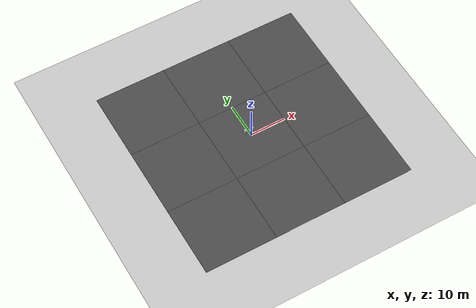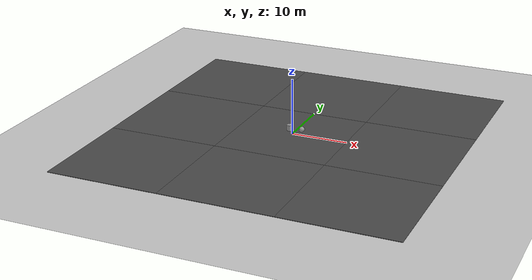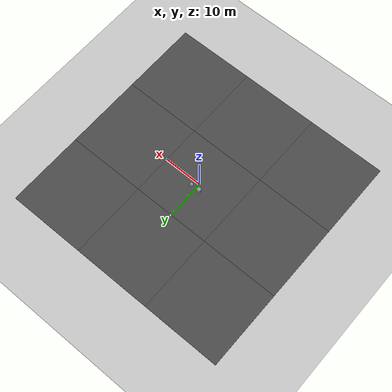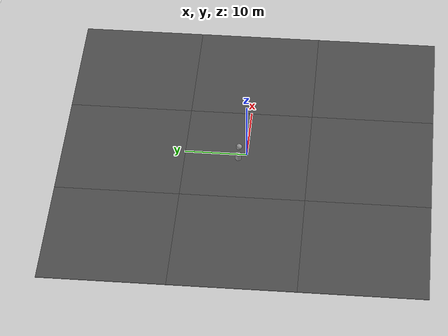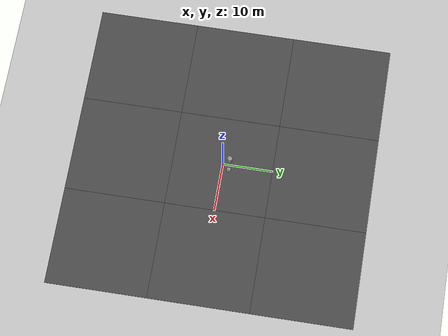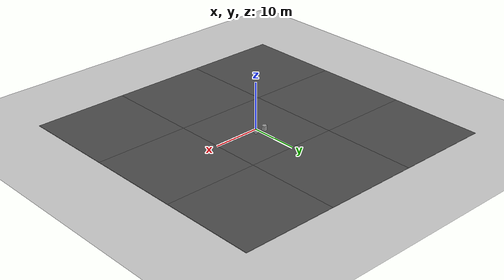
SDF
<sdf version="1.7">
 <world name="default">
  <light name="sun" type="directional">
   <pose>0 0 10 0 -0 0</pose>
   <diffuse>0.8 0.8 0.8 1</diffuse>
   <specular>0.2 0.2 0.2 1</specular>
   <attenuation>
    <range>1000</range>
    <constant>0.9</constant>
    <linear>0.01</linear>
    <quadratic>0.001</quadratic>
   </attenuation>
   <direction>-0.5 0.1 -0.9</direction>
   <spot><inner_angle>0</inner_angle><outer_angle>0</outer_angle><falloff>0</falloff></spot>
  </light>
  <model name="ground_plane">
   <static>1</static>
   <link name="link">
    <collision name="collision">
     <geometry><plane><normal>0 0 1</normal><size>100 100</size></plane></geometry>
     <surface><friction><ode><mu>100</mu><mu2>50</mu2></ode></friction></surface>
    </collision>
    <visual name="visual">
     <cast_shadows>0</cast_shadows>
     <geometry><plane><normal>0 0 1</normal><size>100 100</size></plane></geometry>
     <material>
      <script><uri>file://media/materials/scripts/gazebo.material</uri><name>Gazebo/Grey</name></script>
     </material>
    </visual>
   </link>
  </model>
  <model name="asphalt_plane">
   <static>1</static>
   <link name="link">
    <collision name="collision"><geometry><box><size>20 20 0.1</size></box></geometry></collision>
    <visual name="visual">
     <cast_shadows>0</cast_shadows>
     <geometry><box><size>20 20 0.1</size></box></geometry>
     <material>
      <script>
       <uri>model://asphalt_plane/materials/scripts</uri>
       <uri>model://asphalt_plane/materials/textures</uri>
       <name>vrc/asphalt</name>
      </script>
     </material>
    </visual>
   </link>
  </model>
  <physics name="default_physics" default="0" type="ode">
   <ode>
    <solver>
     <type>quick</type>
     <iters>10</iters>
     <sor>1.3</sor>
     <use_dynamic_moi_rescaling>0</use_dynamic_moi_rescaling>
    </solver>
    <constraints>
     <cfm>0</cfm>
     <erp>0.2</erp>
     <contact_max_correcting_vel>100</contact_max_correcting_vel>
     <contact_surface_layer>0.001</contact_surface_layer>
    </constraints>
   </ode>
   <max_step_size>0.004</max_step_size>
   <real_time_factor>1</real_time_factor>
   <real_time_update_rate>250</real_time_update_rate>
  </physics>
  <gravity>0 0 -9.8066</gravity>
  <magnetic_field>6e-06 2.3e-05 -4.2e-05</magnetic_field>
  <atmosphere type="adiabatic"/>
  <scene><ambient>0.4 0.4 0.4 1</ambient><background>0.7 0.7 0.7 1</background><shadows>1</shadows></scene>
  <model name="asphalt_plane_clone">
   <static>1</static>
   <link name="link">
    <collision name="collision"><geometry><box><size>20 20 0.1</size></box></geometry></collision>
    <visual name="visual">
     <cast_shadows>0</cast_shadows>
     <geometry><box><size>20 20 0.1</size></box></geometry>
     <material>
      <script>
       <uri>model://asphalt_plane/materials/scripts</uri>
       <uri>model://asphalt_plane/materials/textures</uri>
       <name>vrc/asphalt</name>
      </script>
     </material>
    </visual>
   </link>
   <pose>20 0 0 0 -0 0</pose>
  </model>
  <model name="asphalt_plane_clone_0">
   <static>1</static>
   <link name="link">
    <collision name="collision"><geometry><box><size>20 20 0.1</size></box></geometry></collision>
    <visual name="visual">
     <cast_shadows>0</cast_shadows>
     <geometry><box><size>20 20 0.1</size></box></geometry>
     <material>
      <script>
       <uri>model://asphalt_plane/materials/scripts</uri>
       <uri>model://asphalt_plane/materials/textures</uri>
       <name>vrc/asphalt</name>
      </script>
     </material>
    </visual>
   </link>
   <pose>0 -20 0 0 -0 0</pose>
  </model>
  <model name="asphalt_plane_clone_1">
   <static>1</static>
   <link name="link">
    <collision name="collision"><geometry><box><size>20 20 0.1</size></box></geometry></collision>
    <visual name="visual">
     <cast_shadows>0</cast_shadows>
     <geometry><box><size>20 20 0.1</size></box></geometry>
     <material>
      <script>
       <uri>model://asphalt_plane/materials/scripts</uri>
       <uri>model://asphalt_plane/materials/textures</uri>
       <name>vrc/asphalt</name>
      </script>
     </material>
    </visual>
   </link>
   <pose>20 -20 0 0 -0 0</pose>
  </model>
  <model name="asphalt_plane_clone_clone">
   <static>1</static>
   <link name="link">
    <collision name="collision"><geometry><box><size>20 20 0.1</size></box></geometry></collision>
    <visual name="visual">
     <cast_shadows>0</cast_shadows>
     <geometry><box><size>20 20 0.1</size></box></geometry>
     <material>
      <script>
       <uri>model://asphalt_plane/materials/scripts</uri>
       <uri>model://asphalt_plane/materials/textures</uri>
       <name>vrc/asphalt</name>
      </script>
     </material>
    </visual>
   </link>
   <pose>20 20 0 0 -0 0</pose>
  </model>
  <model name="asphalt_plane_clone_clone_0">
   <static>1</static>
   <link name="link">
    <collision name="collision"><geometry><box><size>20 20 0.1</size></box></geometry></collision>
    <visual name="visual">
     <cast_shadows>0</cast_shadows>
     <geometry><box><size>20 20 0.1</size></box></geometry>
     <material>
      <script>
       <uri>model://asphalt_plane/materials/scripts</uri>
       <uri>model://asphalt_plane/materials/textures</uri>
       <name>vrc/asphalt</name>
      </script>
     </material>
    </visual>
   </link>
   <pose>0 20 0 0 -0 0</pose>
  </model>
  <model name="asphalt_plane_clone_clone_1">
   <static>1</static>
   <link name="link">
    <collision name="collision"><geometry><box><size>20 20 0.1</size></box></geometry></collision>
    <visual name="visual">
     <cast_shadows>0</cast_shadows>
     <geometry><box><size>20 20 0.1</size></box></geometry>
     <material>
      <script>
       <uri>model://asphalt_plane/materials/scripts</uri>
       <uri>model://asphalt_plane/materials/textures</uri>
       <name>vrc/asphalt</name>
      </script>
     </material>
    </visual>
   </link>
   <pose>-20 20 0 0 -0 0</pose>
  </model>
  <model name="asphalt_plane_clone_clone_2">
   <static>1</static>
   <link name="link">
    <collision name="collision"><geometry><box><size>20 20 0.1</size></box></geometry></collision>
    <visual name="visual">
     <cast_shadows>0</cast_shadows>
     <geometry><box><size>20 20 0.1</size></box></geometry>
     <material>
      <script>
       <uri>model://asphalt_plane/materials/scripts</uri>
       <uri>model://asphalt_plane/materials/textures</uri>
       <name>vrc/asphalt</name>
      </script>
     </material>
    </visual>
   </link>
   <pose>-20 0 0 0 -0 0</pose>
  </model>
  <model name="asphalt_plane_clone_clone_3">
   <static>1</static>
   <link name="link">
    <collision name="collision"><geometry><box><size>20 20 0.1</size></box></geometry></collision>
    <visual name="visual">
     <cast_shadows>0</cast_shadows>
     <geometry><box><size>20 20 0.1</size></box></geometry>
     <material>
      <script>
       <uri>model://asphalt_plane/materials/scripts</uri>
       <uri>model://asphalt_plane/materials/textures</uri>
       <name>vrc/asphalt</name>
      </script>
     </material>
    </visual>
   </link>
   <pose>-20 -20 0 0 -0 0</pose>
  </model>
  <model name="unit_sphere">
   <pose>1.22262 1.3626 0.55 0 -0 0</pose>
   <link name="link">
    <inertial>
     <mass>1</mass>
     <inertia><ixx>0.1</ixx><ixy>0</ixy><ixz>0</ixz><iyy>0.1</iyy><iyz>0</iyz><izz>0.1</izz></inertia>
    </inertial>
    <collision name="collision"><geometry><sphere><radius>0.5</radius></sphere></geometry></collision>
    <visual name="visual">
     <geometry><sphere><radius>0.5</radius></sphere></geometry>
     <material>
      <script><name>Gazebo/Grey</name><uri>file://media/materials/scripts/gazebo.material</uri></script>
     </material>
    </visual>
   </link>
  </model>
  <model name="unit_cylinder">
   <pose>-1.03624 1.30576 0.54999 -3e-06 2.1e-05 -4.6e-05</pose>
   <link name="link">
    <inertial>
     <mass>1</mass>
     <inertia><ixx>0.145833</ixx><ixy>0</ixy><ixz>0</ixz><iyy>0.145833</iyy><iyz>0</iyz><izz>0.125</izz></inertia>
    </inertial>
    <collision name="collision">
     <geometry><cylinder><radius>0.5</radius><length>1</length></cylinder></geometry>
    </collision>
    <visual name="visual">
     <geometry><cylinder><radius>0.5</radius><length>1</length></cylinder></geometry>
     <material>
      <script><name>Gazebo/Grey</name><uri>file://media/materials/scripts/gazebo.material</uri></script>
     </material>
    </visual>
   </link>
  </model>
  <spherical_coordinates>
   <surface_model>EARTH_WGS84</surface_model>
   <latitude_deg>-34.660019</latitude_deg>
   <longitude_deg>-58.468302</longitude_deg>
   <elevation>14</elevation>
  </spherical_coordinates>
 </world>
</sdf>
